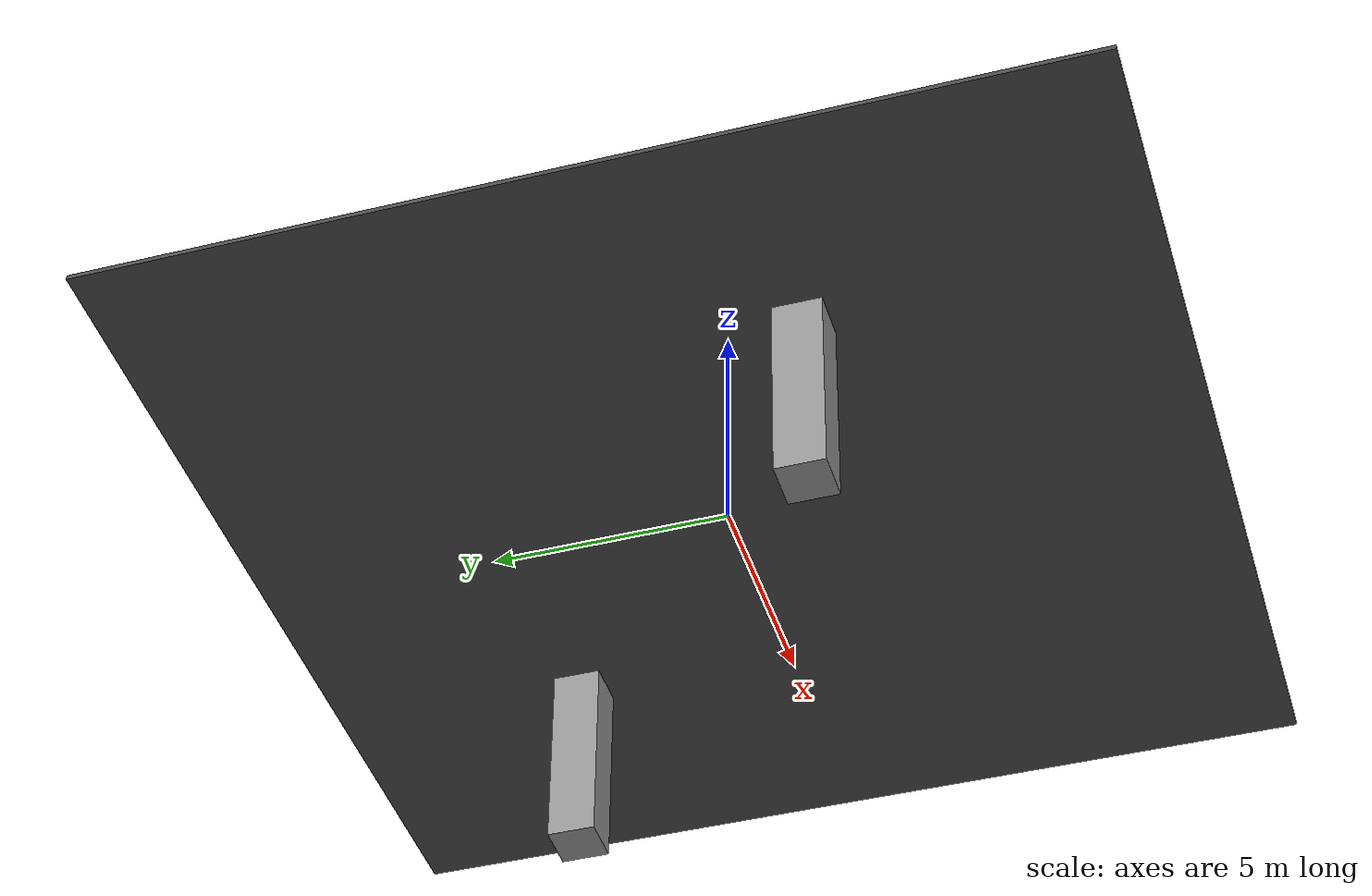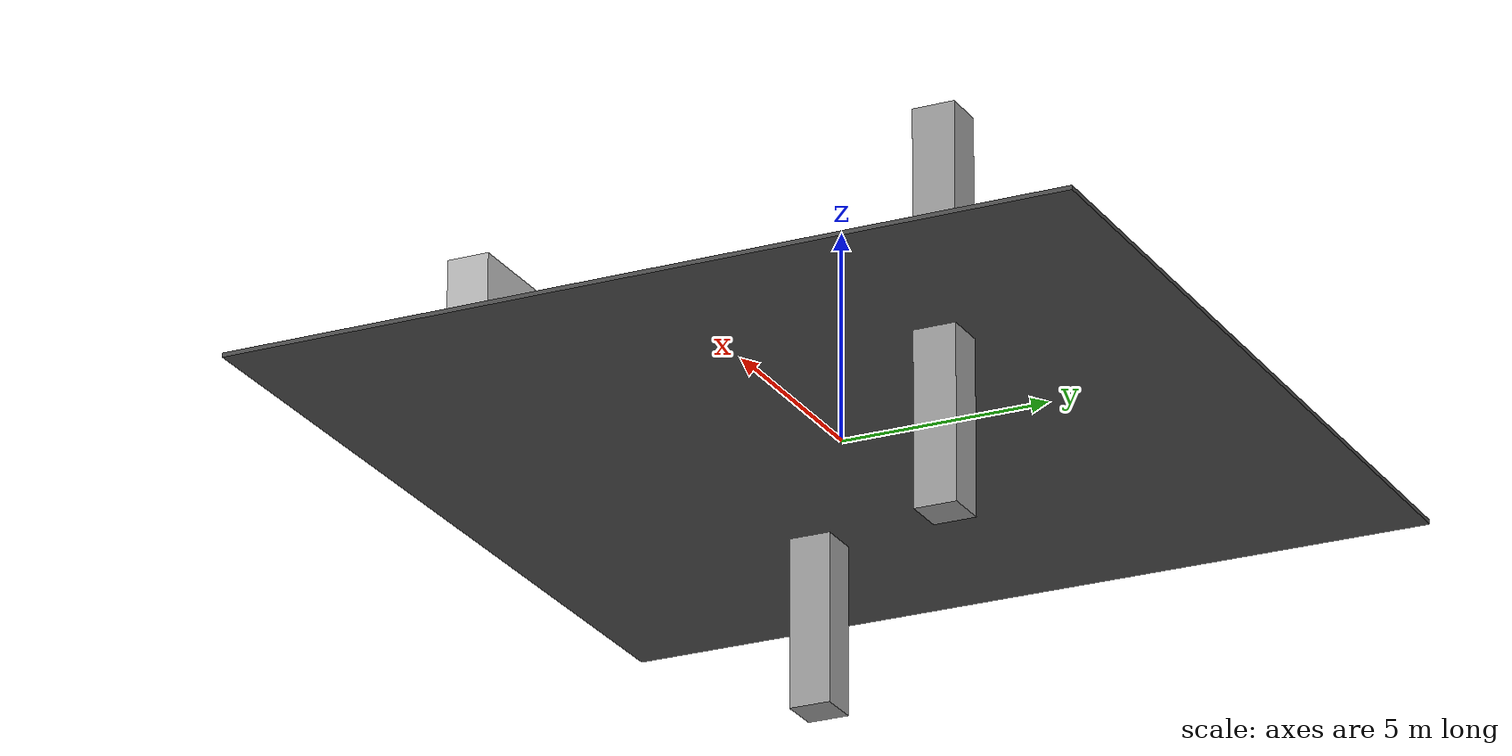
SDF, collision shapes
<?xml version='1.0'?>
<sdf version='1.6'>
  <model name='DQN_world_0'>
    <link name='link'>
      <pose frame=''>0 0 0 0 -0 0</pose>
      <self_collide>0</self_collide>
      <kinematic>0</kinematic>
      <visual name='visual'>
        <cast_shadows>0</cast_shadows>
        <geometry>
          <box>
            <size>20 20 0.1</size>
          </box>
        </geometry>
        <material>
          <script>
            <uri>model://asphalt_plane/materials/scripts</uri>
            <uri>model://asphalt_plane/materials/textures</uri>
            <name>vrc/asphalt</name>
          </script>
          <ambient>0.5 0.5 0.5 1</ambient>
          <diffuse>0.5 0.5 0.5 1</diffuse>
          <specular>0.2 0.2 0.2 1</specular>
          <emissive>0 0 0 1</emissive>
        </material>
        <pose frame=''>0 0 0 0 -0 0</pose>
        <transparency>0</transparency>
      </visual>
      <collision name='collision'>
        <laser_retro>0</laser_retro>
        <max_contacts>10</max_contacts>
        <pose frame=''>0 0 0 0 -0 0</pose>
        <geometry>
          <box>
            <size>20 20 0.1</size>
          </box>
        </geometry>
        <surface>
          <friction>
            <ode>
              <mu>1</mu>
              <mu2>1</mu2>
              <fdir1>0 0 0</fdir1>
              <slip1>0</slip1>
              <slip2>0</slip2>
            </ode>
            <torsional>
              <coefficient>1</coefficient>
              <patch_radius>0</patch_radius>
              <surface_radius>0</surface_radius>
              <use_patch_radius>1</use_patch_radius>
              <ode>
                <slip>0</slip>
              </ode>
            </torsional>
          </friction>
          <bounce>
            <restitution_coefficient>0</restitution_coefficient>
            <threshold>1e+06</threshold>
          </bounce>
          <contact>
            <collide_without_contact>0</collide_without_contact>
            <collide_without_contact_bitmask>1</collide_without_contact_bitmask>
            <collide_bitmask>1</collide_bitmask>
            <ode>
              <soft_cfm>0</soft_cfm>
              <soft_erp>0.2</soft_erp>
              <kp>1e+13</kp>
              <kd>1</kd>
              <max_vel>0.01</max_vel>
              <min_depth>0</min_depth>
            </ode>
            <bullet>
              <split_impulse>1</split_impulse>
              <split_impulse_penetration_threshold>-0.01</split_impulse_penetration_threshold>
              <soft_cfm>0</soft_cfm>
              <soft_erp>0.2</soft_erp>
              <kp>1e+13</kp>
              <kd>1</kd>
            </bullet>
          </contact>
        </surface>
      </collision>
    </link>
    <link name='link_0'>
      <pose frame=''>4.42205 4.53667 0.5 0 -0 0</pose>
      <inertial>
        <mass>9.33899</mass>
        <inertia>
          <ixx>68.6547</ixx>
          <ixy>0</ixy>
          <ixz>0</ixz>
          <iyy>68.6547</iyy>
          <iyz>0</iyz>
          <izz>1.5565</izz>
        </inertia>
        <pose frame=''>0 0 0 0 -0 0</pose>
      </inertial>
      <self_collide>0</self_collide>
      <kinematic>0</kinematic>
      <visual name='visual'>
        <pose frame=''>0 0 0 0 -0 0</pose>
        <geometry>
          <box>
            <size>1 1 9.33898</size>
          </box>
        </geometry>
        <material>
          <lighting>1</lighting>
          <script>
            <uri>file://media/materials/scripts/gazebo.material</uri>
            <name>Gazebo/Grey</name>
          </script>
          <ambient>0.3 0.3 0.3 1</ambient>
          <diffuse>0.7 0.7 0.7 1</diffuse>
          <specular>0.01 0.01 0.01 1</specular>
          <emissive>0 0 0 1</emissive>
          <shader type='vertex'>
            <normal_map>__default__</normal_map>
          </shader>
        </material>
        <cast_shadows>1</cast_shadows>
        <transparency>0</transparency>
      </visual>
      <collision name='collision'>
        <laser_retro>0</laser_retro>
        <max_contacts>10</max_contacts>
        <pose frame=''>0 0 0 0 -0 0</pose>
        <geometry>
          <box>
            <size>1 1 9.33898</size>
          </box>
        </geometry>
        <surface>
          <friction>
            <ode>
              <mu>1</mu>
              <mu2>1</mu2>
              <fdir1>0 0 0</fdir1>
              <slip1>0</slip1>
              <slip2>0</slip2>
            </ode>
            <torsional>
              <coefficient>1</coefficient>
              <patch_radius>0</patch_radius>
              <surface_radius>0</surface_radius>
              <use_patch_radius>1</use_patch_radius>
              <ode>
                <slip>0</slip>
              </ode>
            </torsional>
          </friction>
          <bounce>
            <restitution_coefficient>0</restitution_coefficient>
            <threshold>1e+06</threshold>
          </bounce>
          <contact>
            <collide_without_contact>0</collide_without_contact>
            <collide_without_contact_bitmask>1</collide_without_contact_bitmask>
            <collide_bitmask>1</collide_bitmask>
            <ode>
              <soft_cfm>0</soft_cfm>
              <soft_erp>0.2</soft_erp>
              <kp>1e+13</kp>
              <kd>1</kd>
              <max_vel>0.01</max_vel>
              <min_depth>0</min_depth>
            </ode>
            <bullet>
              <split_impulse>1</split_impulse>
              <split_impulse_penetration_threshold>-0.01</split_impulse_penetration_threshold>
              <soft_cfm>0</soft_cfm>
              <soft_erp>0.2</soft_erp>
              <kp>1e+13</kp>
              <kd>1</kd>
            </bullet>
          </contact>
        </surface>
      </collision>
    </link>
    <link name='link_0_clone'>
      <pose frame=''>-5.06208 -2.97464 0.5 0 -0 0</pose>
      <inertial>
        <mass>9.33899</mass>
        <inertia>
          <ixx>68.6547</ixx>
          <ixy>0</ixy>
          <ixz>0</ixz>
          <iyy>68.6547</iyy>
          <iyz>0</iyz>
          <izz>1.5565</izz>
        </inertia>
        <pose frame=''>0 0 0 0 -0 0</pose>
      </inertial>
      <self_collide>0</self_collide>
      <kinematic>0</kinematic>
      <visual name='visual'>
        <pose frame=''>0 0 0 0 -0 0</pose>
        <geometry>
          <box>
            <size>1 1 9.33898</size>
          </box>
        </geometry>
        <material>
          <lighting>1</lighting>
          <script>
            <uri>file://media/materials/scripts/gazebo.material</uri>
            <name>Gazebo/Grey</name>
          </script>
          <ambient>0.3 0.3 0.3 1</ambient>
          <diffuse>0.7 0.7 0.7 1</diffuse>
          <specular>0.01 0.01 0.01 1</specular>
          <emissive>0 0 0 1</emissive>
          <shader type='vertex'>
            <normal_map>__default__</normal_map>
          </shader>
        </material>
        <cast_shadows>1</cast_shadows>
        <transparency>0</transparency>
      </visual>
      <collision name='collision'>
        <laser_retro>0</laser_retro>
        <max_contacts>10</max_contacts>
        <pose frame=''>0 0 0 0 -0 0</pose>
        <geometry>
          <box>
            <size>1 1 9.33898</size>
          </box>
        </geometry>
        <surface>
          <friction>
            <ode>
              <mu>1</mu>
              <mu2>1</mu2>
              <fdir1>0 0 0</fdir1>
              <slip1>0</slip1>
              <slip2>0</slip2>
            </ode>
            <torsional>
              <coefficient>1</coefficient>
              <patch_radius>0</patch_radius>
              <surface_radius>0</surface_radius>
              <use_patch_radius>1</use_patch_radius>
              <ode>
                <slip>0</slip>
              </ode>
            </torsional>
          </friction>
          <bounce>
            <restitution_coefficient>0</restitution_coefficient>
            <threshold>1e+06</threshold>
          </bounce>
          <contact>
            <collide_without_contact>0</collide_without_contact>
            <collide_without_contact_bitmask>1</collide_without_contact_bitmask>
            <collide_bitmask>1</collide_bitmask>
            <ode>
              <soft_cfm>0</soft_cfm>
              <soft_erp>0.2</soft_erp>
              <kp>1e+13</kp>
              <kd>1</kd>
              <max_vel>0.01</max_vel>
              <min_depth>0</min_depth>
            </ode>
            <bullet>
              <split_impulse>1</split_impulse>
              <split_impulse_penetration_threshold>-0.01</split_impulse_penetration_threshold>
              <soft_cfm>0</soft_cfm>
              <soft_erp>0.2</soft_erp>
              <kp>1e+13</kp>
              <kd>1</kd>
            </bullet>
          </contact>
        </surface>
      </collision>
    </link>
    <model name='brick_box_3x1x3'>
      <static>1</static>
      <link name='chassis'>
        <pose frame=''>0 0 1.5 0 -0 0</pose>
        <collision name='collision'>
          <geometry>
            <box>
              <size>3 1 3</size>
            </box>
          </geometry>
          <max_contacts>10</max_contacts>
          <surface>
            <contact>
              <ode/>
            </contact>
            <bounce/>
            <friction>
              <torsional>
                <ode/>
              </torsional>
              <ode/>
            </friction>
          </surface>
        </collision>
        <visual name='visual'>
          <geometry>
            <mesh>
              <uri>model://brick_box_3x1x3/meshes/simple_box.dae</uri>
              <scale>3 1 3</scale>
            </mesh>
          </geometry>
          <material>
            <script>
              <uri>model://brick_box_3x1x3/materials/scripts</uri>
              <uri>model://brick_box_3x1x3/materials/textures</uri>
              <name>BrickBox/Diffuse</name>
            </script>
          </material>
        </visual>
        <self_collide>0</self_collide>
        <kinematic>0</kinematic>
        <gravity>1</gravity>
      </link>
      <pose frame=''>-4.06208 4.02536 0 0 -0 0</pose>
    </model>
    <model name='brick_box_3x1x3_clone'>
      <static>1</static>
      <link name='chassis'>
        <pose frame=''>0 0 1.5 0 -0 0</pose>
        <collision name='collision'>
          <geometry>
            <box>
              <size>3 1 3</size>
            </box>
          </geometry>
          <max_contacts>10</max_contacts>
          <surface>
            <contact>
              <ode/>
            </contact>
            <bounce/>
            <friction>
              <torsional>
                <ode/>
              </torsional>
              <ode/>
            </friction>
          </surface>
        </collision>
        <visual name='visual'>
          <geometry>
            <mesh>
              <uri>model://brick_box_3x1x3/meshes/simple_box.dae</uri>
              <scale>3 1 3</scale>
            </mesh>
          </geometry>
          <material>
            <script>
              <uri>model://brick_box_3x1x3/materials/scripts</uri>
              <uri>model://brick_box_3x1x3/materials/textures</uri>
              <name>BrickBox/Diffuse</name>
            </script>
          </material>
        </visual>
        <self_collide>0</self_collide>
        <kinematic>0</kinematic>
        <gravity>1</gravity>
      </link>
      <pose frame=''>4.93792 -5.97464 0 0 -0 0</pose>
    </model>
    <static>1</static>
    <allow_auto_disable>1</allow_auto_disable>
  </model>
</sdf>
